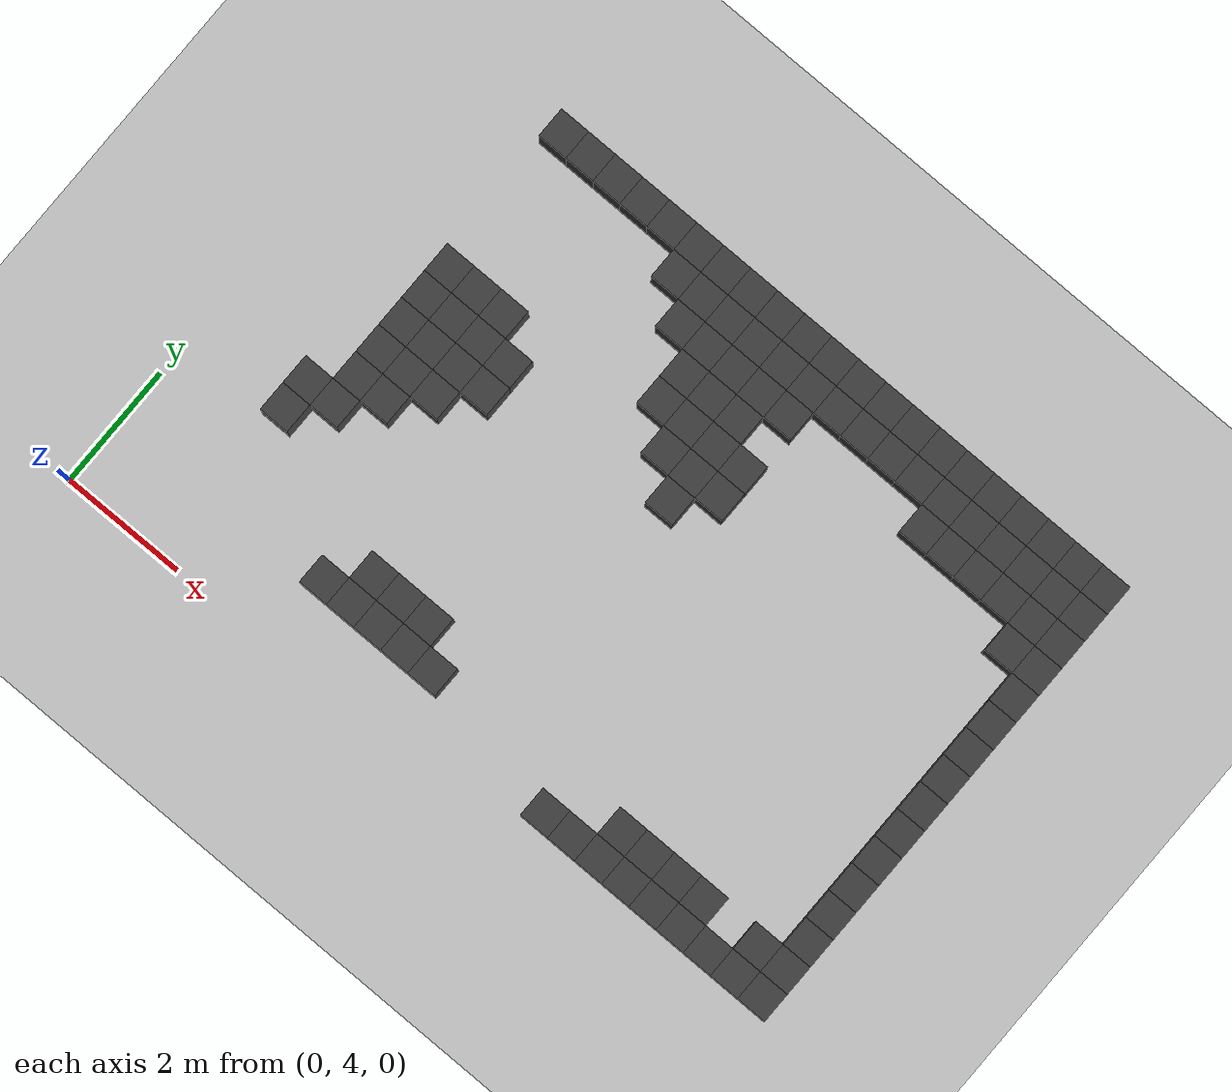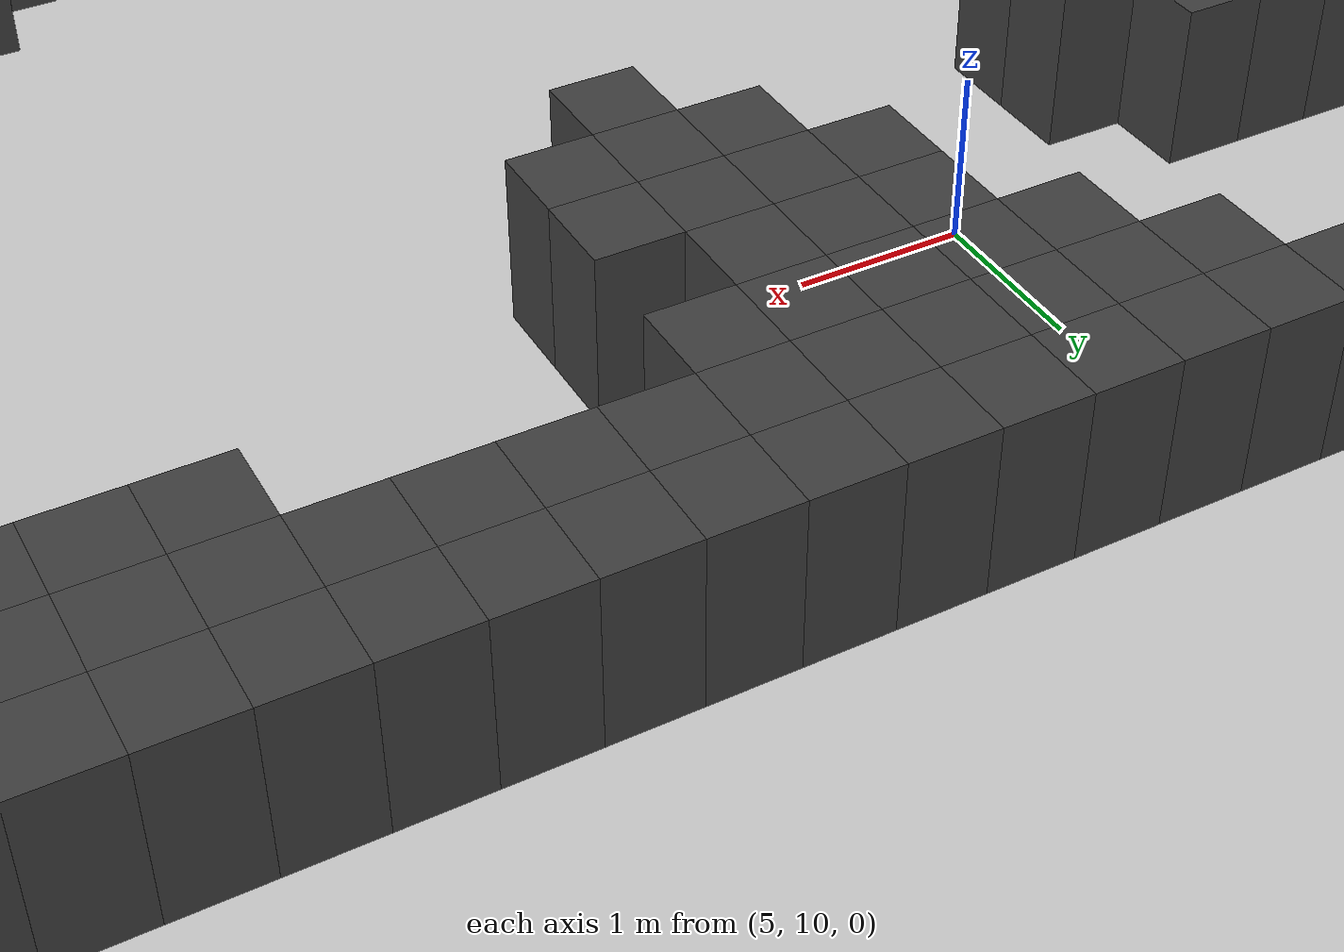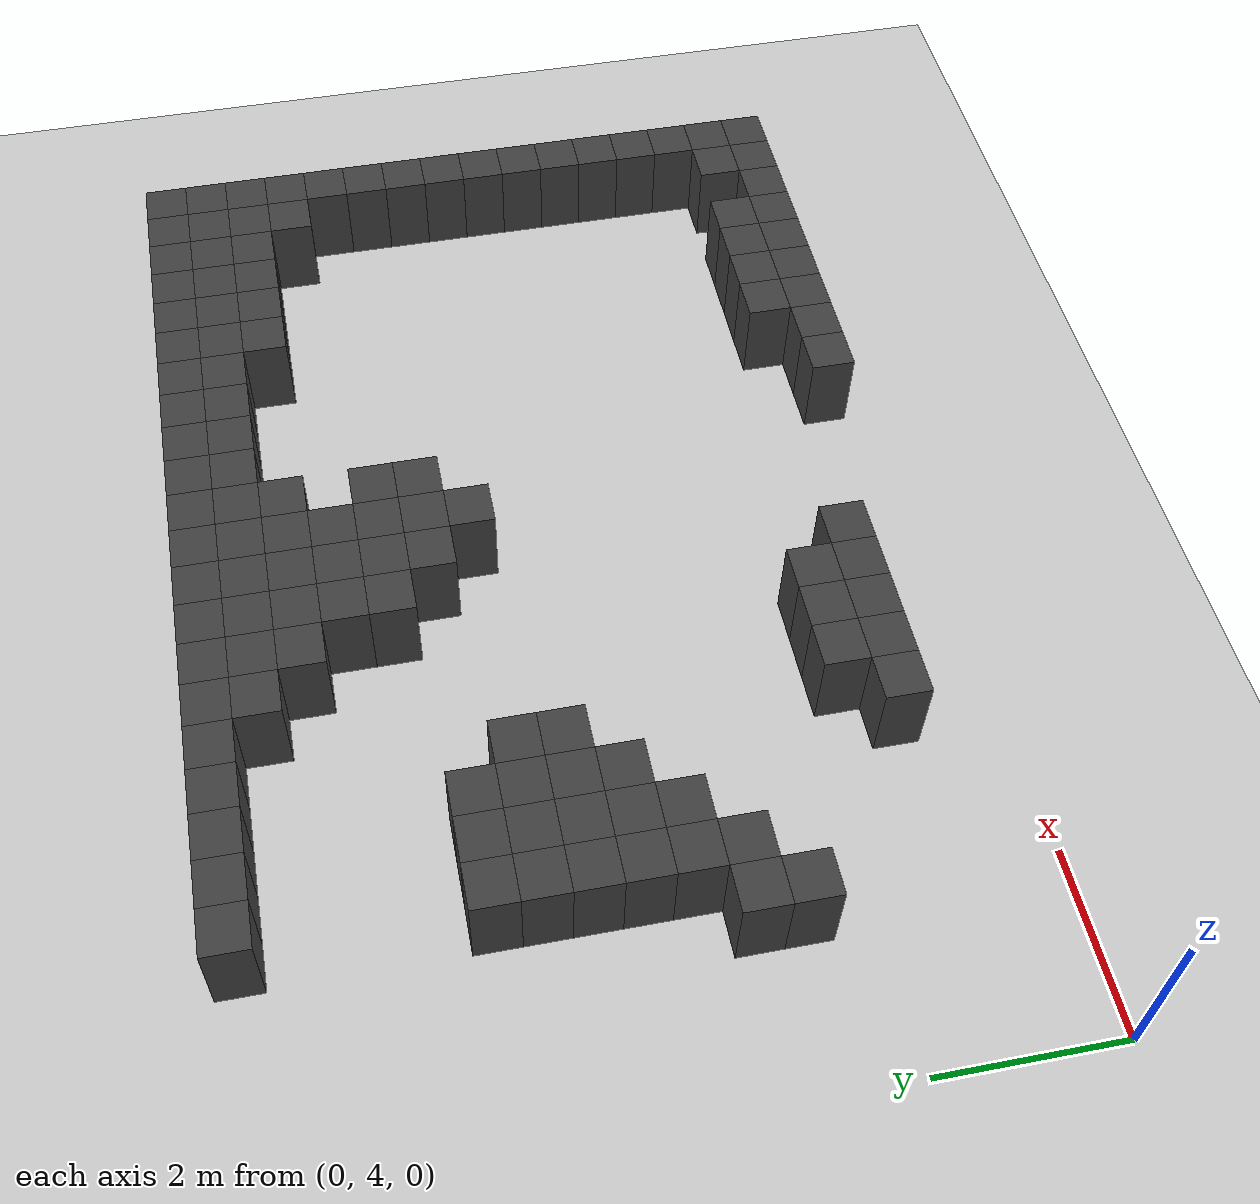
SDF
<sdf version="1.7">
 <world name="map_9405">
  <model name="ground_plane">
   <static>true</static>
   <link name="link">
    <collision name="collision">
     <geometry><plane><normal>0 0 1</normal><size>200 200</size></plane></geometry>
    </collision>
    <visual name="visual">
     <geometry><plane><normal>0 0 1</normal><size>200 200</size></plane></geometry>
     <material><ambient>0.8 0.8 0.8 1</ambient><diffuse>0.8 0.8 0.8 1</diffuse></material>
    </visual>
   </link>
  </model>
  <model name="maze_environment">
   <static>true</static>
   <link name="wall_29">
    <pose>2.250 12.250 0.500 0 0 0</pose>
    <collision name="col"><geometry><box><size>0.5 0.5 1.0</size></box></geometry></collision>
    <visual name="vis">
     <geometry><box><size>0.5 0.5 1.0</size></box></geometry>
     <material><ambient>0.15 0.15 0.15 1</ambient><diffuse>0.25 0.25 0.25 1</diffuse></material>
    </visual>
   </link>
   <link name="wall_30">
    <pose>2.750 12.250 0.500 0 0 0</pose>
    <collision name="col"><geometry><box><size>0.5 0.5 1.0</size></box></geometry></collision>
    <visual name="vis">
     <geometry><box><size>0.5 0.5 1.0</size></box></geometry>
     <material><ambient>0.15 0.15 0.15 1</ambient><diffuse>0.25 0.25 0.25 1</diffuse></material>
    </visual>
   </link>
   <link name="wall_31">
    <pose>3.250 12.250 0.500 0 0 0</pose>
    <collision name="col"><geometry><box><size>0.5 0.5 1.0</size></box></geometry></collision>
    <visual name="vis">
     <geometry><box><size>0.5 0.5 1.0</size></box></geometry>
     <material><ambient>0.15 0.15 0.15 1</ambient><diffuse>0.25 0.25 0.25 1</diffuse></material>
    </visual>
   </link>
   <link name="wall_32">
    <pose>3.750 12.250 0.500 0 0 0</pose>
    <collision name="col"><geometry><box><size>0.5 0.5 1.0</size></box></geometry></collision>
    <visual name="vis">
     <geometry><box><size>0.5 0.5 1.0</size></box></geometry>
     <material><ambient>0.15 0.15 0.15 1</ambient><diffuse>0.25 0.25 0.25 1</diffuse></material>
    </visual>
   </link>
   <link name="wall_33">
    <pose>4.250 12.250 0.500 0 0 0</pose>
    <collision name="col"><geometry><box><size>0.5 0.5 1.0</size></box></geometry></collision>
    <visual name="vis">
     <geometry><box><size>0.5 0.5 1.0</size></box></geometry>
     <material><ambient>0.15 0.15 0.15 1</ambient><diffuse>0.25 0.25 0.25 1</diffuse></material>
    </visual>
   </link>
   <link name="wall_34">
    <pose>4.750 12.250 0.500 0 0 0</pose>
    <collision name="col"><geometry><box><size>0.5 0.5 1.0</size></box></geometry></collision>
    <visual name="vis">
     <geometry><box><size>0.5 0.5 1.0</size></box></geometry>
     <material><ambient>0.15 0.15 0.15 1</ambient><diffuse>0.25 0.25 0.25 1</diffuse></material>
    </visual>
   </link>
   <link name="wall_35">
    <pose>5.250 12.250 0.500 0 0 0</pose>
    <collision name="col"><geometry><box><size>0.5 0.5 1.0</size></box></geometry></collision>
    <visual name="vis">
     <geometry><box><size>0.5 0.5 1.0</size></box></geometry>
     <material><ambient>0.15 0.15 0.15 1</ambient><diffuse>0.25 0.25 0.25 1</diffuse></material>
    </visual>
   </link>
   <link name="wall_36">
    <pose>5.750 12.250 0.500 0 0 0</pose>
    <collision name="col"><geometry><box><size>0.5 0.5 1.0</size></box></geometry></collision>
    <visual name="vis">
     <geometry><box><size>0.5 0.5 1.0</size></box></geometry>
     <material><ambient>0.15 0.15 0.15 1</ambient><diffuse>0.25 0.25 0.25 1</diffuse></material>
    </visual>
   </link>
   <link name="wall_37">
    <pose>6.250 12.250 0.500 0 0 0</pose>
    <collision name="col"><geometry><box><size>0.5 0.5 1.0</size></box></geometry></collision>
    <visual name="vis">
     <geometry><box><size>0.5 0.5 1.0</size></box></geometry>
     <material><ambient>0.15 0.15 0.15 1</ambient><diffuse>0.25 0.25 0.25 1</diffuse></material>
    </visual>
   </link>
   <link name="wall_38">
    <pose>6.750 12.250 0.500 0 0 0</pose>
    <collision name="col"><geometry><box><size>0.5 0.5 1.0</size></box></geometry></collision>
    <visual name="vis">
     <geometry><box><size>0.5 0.5 1.0</size></box></geometry>
     <material><ambient>0.15 0.15 0.15 1</ambient><diffuse>0.25 0.25 0.25 1</diffuse></material>
    </visual>
   </link>
   <link name="wall_39">
    <pose>7.250 12.250 0.500 0 0 0</pose>
    <collision name="col"><geometry><box><size>0.5 0.5 1.0</size></box></geometry></collision>
    <visual name="vis">
     <geometry><box><size>0.5 0.5 1.0</size></box></geometry>
     <material><ambient>0.15 0.15 0.15 1</ambient><diffuse>0.25 0.25 0.25 1</diffuse></material>
    </visual>
   </link>
   <link name="wall_40">
    <pose>7.750 12.250 0.500 0 0 0</pose>
    <collision name="col"><geometry><box><size>0.5 0.5 1.0</size></box></geometry></collision>
    <visual name="vis">
     <geometry><box><size>0.5 0.5 1.0</size></box></geometry>
     <material><ambient>0.15 0.15 0.15 1</ambient><diffuse>0.25 0.25 0.25 1</diffuse></material>
    </visual>
   </link>
   <link name="wall_41">
    <pose>8.250 12.250 0.500 0 0 0</pose>
    <collision name="col"><geometry><box><size>0.5 0.5 1.0</size></box></geometry></collision>
    <visual name="vis">
     <geometry><box><size>0.5 0.5 1.0</size></box></geometry>
     <material><ambient>0.15 0.15 0.15 1</ambient><diffuse>0.25 0.25 0.25 1</diffuse></material>
    </visual>
   </link>
   <link name="wall_42">
    <pose>8.750 12.250 0.500 0 0 0</pose>
    <collision name="col"><geometry><box><size>0.5 0.5 1.0</size></box></geometry></collision>
    <visual name="vis">
     <geometry><box><size>0.5 0.5 1.0</size></box></geometry>
     <material><ambient>0.15 0.15 0.15 1</ambient><diffuse>0.25 0.25 0.25 1</diffuse></material>
    </visual>
   </link>
   <link name="wall_43">
    <pose>9.250 12.250 0.500 0 0 0</pose>
    <collision name="col"><geometry><box><size>0.5 0.5 1.0</size></box></geometry></collision>
    <visual name="vis">
     <geometry><box><size>0.5 0.5 1.0</size></box></geometry>
     <material><ambient>0.15 0.15 0.15 1</ambient><diffuse>0.25 0.25 0.25 1</diffuse></material>
    </visual>
   </link>
   <link name="wall_44">
    <pose>9.750 12.250 0.500 0 0 0</pose>
    <collision name="col"><geometry><box><size>0.5 0.5 1.0</size></box></geometry></collision>
    <visual name="vis">
     <geometry><box><size>0.5 0.5 1.0</size></box></geometry>
     <material><ambient>0.15 0.15 0.15 1</ambient><diffuse>0.25 0.25 0.25 1</diffuse></material>
    </visual>
   </link>
   <link name="wall_45">
    <pose>10.250 12.250 0.500 0 0 0</pose>
    <collision name="col"><geometry><box><size>0.5 0.5 1.0</size></box></geometry></collision>
    <visual name="vis">
     <geometry><box><size>0.5 0.5 1.0</size></box></geometry>
     <material><ambient>0.15 0.15 0.15 1</ambient><diffuse>0.25 0.25 0.25 1</diffuse></material>
    </visual>
   </link>
   <link name="wall_46">
    <pose>10.750 12.250 0.500 0 0 0</pose>
    <collision name="col"><geometry><box><size>0.5 0.5 1.0</size></box></geometry></collision>
    <visual name="vis">
     <geometry><box><size>0.5 0.5 1.0</size></box></geometry>
     <material><ambient>0.15 0.15 0.15 1</ambient><diffuse>0.25 0.25 0.25 1</diffuse></material>
    </visual>
   </link>
   <link name="wall_47">
    <pose>11.250 12.250 0.500 0 0 0</pose>
    <collision name="col"><geometry><box><size>0.5 0.5 1.0</size></box></geometry></collision>
    <visual name="vis">
     <geometry><box><size>0.5 0.5 1.0</size></box></geometry>
     <material><ambient>0.15 0.15 0.15 1</ambient><diffuse>0.25 0.25 0.25 1</diffuse></material>
    </visual>
   </link>
   <link name="wall_48">
    <pose>11.750 12.250 0.500 0 0 0</pose>
    <collision name="col"><geometry><box><size>0.5 0.5 1.0</size></box></geometry></collision>
    <visual name="vis">
     <geometry><box><size>0.5 0.5 1.0</size></box></geometry>
     <material><ambient>0.15 0.15 0.15 1</ambient><diffuse>0.25 0.25 0.25 1</diffuse></material>
    </visual>
   </link>
   <link name="wall_49">
    <pose>12.250 12.250 0.500 0 0 0</pose>
    <collision name="col"><geometry><box><size>0.5 0.5 1.0</size></box></geometry></collision>
    <visual name="vis">
     <geometry><box><size>0.5 0.5 1.0</size></box></geometry>
     <material><ambient>0.15 0.15 0.15 1</ambient><diffuse>0.25 0.25 0.25 1</diffuse></material>
    </visual>
   </link>
   <link name="wall_60">
    <pose>4.750 11.750 0.500 0 0 0</pose>
    <collision name="col"><geometry><box><size>0.5 0.5 1.0</size></box></geometry></collision>
    <visual name="vis">
     <geometry><box><size>0.5 0.5 1.0</size></box></geometry>
     <material><ambient>0.15 0.15 0.15 1</ambient><diffuse>0.25 0.25 0.25 1</diffuse></material>
    </visual>
   </link>
   <link name="wall_61">
    <pose>5.250 11.750 0.500 0 0 0</pose>
    <collision name="col"><geometry><box><size>0.5 0.5 1.0</size></box></geometry></collision>
    <visual name="vis">
     <geometry><box><size>0.5 0.5 1.0</size></box></geometry>
     <material><ambient>0.15 0.15 0.15 1</ambient><diffuse>0.25 0.25 0.25 1</diffuse></material>
    </visual>
   </link>
   <link name="wall_62">
    <pose>5.750 11.750 0.500 0 0 0</pose>
    <collision name="col"><geometry><box><size>0.5 0.5 1.0</size></box></geometry></collision>
    <visual name="vis">
     <geometry><box><size>0.5 0.5 1.0</size></box></geometry>
     <material><ambient>0.15 0.15 0.15 1</ambient><diffuse>0.25 0.25 0.25 1</diffuse></material>
    </visual>
   </link>
   <link name="wall_63">
    <pose>6.250 11.750 0.500 0 0 0</pose>
    <collision name="col"><geometry><box><size>0.5 0.5 1.0</size></box></geometry></collision>
    <visual name="vis">
     <geometry><box><size>0.5 0.5 1.0</size></box></geometry>
     <material><ambient>0.15 0.15 0.15 1</ambient><diffuse>0.25 0.25 0.25 1</diffuse></material>
    </visual>
   </link>
   <link name="wall_64">
    <pose>6.750 11.750 0.500 0 0 0</pose>
    <collision name="col"><geometry><box><size>0.5 0.5 1.0</size></box></geometry></collision>
    <visual name="vis">
     <geometry><box><size>0.5 0.5 1.0</size></box></geometry>
     <material><ambient>0.15 0.15 0.15 1</ambient><diffuse>0.25 0.25 0.25 1</diffuse></material>
    </visual>
   </link>
   <link name="wall_65">
    <pose>7.250 11.750 0.500 0 0 0</pose>
    <collision name="col"><geometry><box><size>0.5 0.5 1.0</size></box></geometry></collision>
    <visual name="vis">
     <geometry><box><size>0.5 0.5 1.0</size></box></geometry>
     <material><ambient>0.15 0.15 0.15 1</ambient><diffuse>0.25 0.25 0.25 1</diffuse></material>
    </visual>
   </link>
   <link name="wall_66">
    <pose>7.750 11.750 0.500 0 0 0</pose>
    <collision name="col"><geometry><box><size>0.5 0.5 1.0</size></box></geometry></collision>
    <visual name="vis">
     <geometry><box><size>0.5 0.5 1.0</size></box></geometry>
     <material><ambient>0.15 0.15 0.15 1</ambient><diffuse>0.25 0.25 0.25 1</diffuse></material>
    </visual>
   </link>
   <link name="wall_67">
    <pose>8.250 11.750 0.500 0 0 0</pose>
    <collision name="col"><geometry><box><size>0.5 0.5 1.0</size></box></geometry></collision>
    <visual name="vis">
     <geometry><box><size>0.5 0.5 1.0</size></box></geometry>
     <material><ambient>0.15 0.15 0.15 1</ambient><diffuse>0.25 0.25 0.25 1</diffuse></material>
    </visual>
   </link>
   <link name="wall_68">
    <pose>8.750 11.750 0.500 0 0 0</pose>
    <collision name="col"><geometry><box><size>0.5 0.5 1.0</size></box></geometry></collision>
    <visual name="vis">
     <geometry><box><size>0.5 0.5 1.0</size></box></geometry>
     <material><ambient>0.15 0.15 0.15 1</ambient><diffuse>0.25 0.25 0.25 1</diffuse></material>
    </visual>
   </link>
   <link name="wall_69">
    <pose>9.250 11.750 0.500 0 0 0</pose>
    <collision name="col"><geometry><box><size>0.5 0.5 1.0</size></box></geometry></collision>
    <visual name="vis">
     <geometry><box><size>0.5 0.5 1.0</size></box></geometry>
     <material><ambient>0.15 0.15 0.15 1</ambient><diffuse>0.25 0.25 0.25 1</diffuse></material>
    </visual>
   </link>
   <link name="wall_70">
    <pose>9.750 11.750 0.500 0 0 0</pose>
    <collision name="col"><geometry><box><size>0.5 0.5 1.0</size></box></geometry></collision>
    <visual name="vis">
     <geometry><box><size>0.5 0.5 1.0</size></box></geometry>
     <material><ambient>0.15 0.15 0.15 1</ambient><diffuse>0.25 0.25 0.25 1</diffuse></material>
    </visual>
   </link>
   <link name="wall_71">
    <pose>10.250 11.750 0.500 0 0 0</pose>
    <collision name="col"><geometry><box><size>0.5 0.5 1.0</size></box></geometry></collision>
    <visual name="vis">
     <geometry><box><size>0.5 0.5 1.0</size></box></geometry>
     <material><ambient>0.15 0.15 0.15 1</ambient><diffuse>0.25 0.25 0.25 1</diffuse></material>
    </visual>
   </link>
   <link name="wall_72">
    <pose>10.750 11.750 0.500 0 0 0</pose>
    <collision name="col"><geometry><box><size>0.5 0.5 1.0</size></box></geometry></collision>
    <visual name="vis">
     <geometry><box><size>0.5 0.5 1.0</size></box></geometry>
     <material><ambient>0.15 0.15 0.15 1</ambient><diffuse>0.25 0.25 0.25 1</diffuse></material>
    </visual>
   </link>
   <link name="wall_73">
    <pose>11.250 11.750 0.500 0 0 0</pose>
    <collision name="col"><geometry><box><size>0.5 0.5 1.0</size></box></geometry></collision>
    <visual name="vis">
     <geometry><box><size>0.5 0.5 1.0</size></box></geometry>
     <material><ambient>0.15 0.15 0.15 1</ambient><diffuse>0.25 0.25 0.25 1</diffuse></material>
    </visual>
   </link>
   <link name="wall_74">
    <pose>11.750 11.750 0.500 0 0 0</pose>
    <collision name="col"><geometry><box><size>0.5 0.5 1.0</size></box></geometry></collision>
    <visual name="vis">
     <geometry><box><size>0.5 0.5 1.0</size></box></geometry>
     <material><ambient>0.15 0.15 0.15 1</ambient><diffuse>0.25 0.25 0.25 1</diffuse></material>
    </visual>
   </link>
   <link name="wall_75">
    <pose>12.250 11.750 0.500 0 0 0</pose>
    <collision name="col"><geometry><box><size>0.5 0.5 1.0</size></box></geometry></collision>
    <visual name="vis">
     <geometry><box><size>0.5 0.5 1.0</size></box></geometry>
     <material><ambient>0.15 0.15 0.15 1</ambient><diffuse>0.25 0.25 0.25 1</diffuse></material>
    </visual>
   </link>
   <link name="wall_78">
    <pose>5.250 11.250 0.500 0 0 0</pose>
    <collision name="col"><geometry><box><size>0.5 0.5 1.0</size></box></geometry></collision>
    <visual name="vis">
     <geometry><box><size>0.5 0.5 1.0</size></box></geometry>
     <material><ambient>0.15 0.15 0.15 1</ambient><diffuse>0.25 0.25 0.25 1</diffuse></material>
    </visual>
   </link>
   <link name="wall_79">
    <pose>5.750 11.250 0.500 0 0 0</pose>
    <collision name="col"><geometry><box><size>0.5 0.5 1.0</size></box></geometry></collision>
    <visual name="vis">
     <geometry><box><size>0.5 0.5 1.0</size></box></geometry>
     <material><ambient>0.15 0.15 0.15 1</ambient><diffuse>0.25 0.25 0.25 1</diffuse></material>
    </visual>
   </link>
   <link name="wall_80">
    <pose>6.250 11.250 0.500 0 0 0</pose>
    <collision name="col"><geometry><box><size>0.5 0.5 1.0</size></box></geometry></collision>
    <visual name="vis">
     <geometry><box><size>0.5 0.5 1.0</size></box></geometry>
     <material><ambient>0.15 0.15 0.15 1</ambient><diffuse>0.25 0.25 0.25 1</diffuse></material>
    </visual>
   </link>
   <link name="wall_81">
    <pose>6.750 11.250 0.500 0 0 0</pose>
    <collision name="col"><geometry><box><size>0.5 0.5 1.0</size></box></geometry></collision>
    <visual name="vis">
     <geometry><box><size>0.5 0.5 1.0</size></box></geometry>
     <material><ambient>0.15 0.15 0.15 1</ambient><diffuse>0.25 0.25 0.25 1</diffuse></material>
    </visual>
   </link>
   <link name="wall_82">
    <pose>7.250 11.250 0.500 0 0 0</pose>
    <collision name="col"><geometry><box><size>0.5 0.5 1.0</size></box></geometry></collision>
    <visual name="vis">
     <geometry><box><size>0.5 0.5 1.0</size></box></geometry>
     <material><ambient>0.15 0.15 0.15 1</ambient><diffuse>0.25 0.25 0.25 1</diffuse></material>
    </visual>
   </link>
   <link name="wall_83">
    <pose>9.750 11.250 0.500 0 0 0</pose>
    <collision name="col"><geometry><box><size>0.5 0.5 1.0</size></box></geometry></collision>
    <visual name="vis">
     <geometry><box><size>0.5 0.5 1.0</size></box></geometry>
     <material><ambient>0.15 0.15 0.15 1</ambient><diffuse>0.25 0.25 0.25 1</diffuse></material>
    </visual>
   </link>
   <link name="wall_84">
    <pose>10.250 11.250 0.500 0 0 0</pose>
    <collision name="col"><geometry><box><size>0.5 0.5 1.0</size></box></geometry></collision>
    <visual name="vis">
     <geometry><box><size>0.5 0.5 1.0</size></box></geometry>
     <material><ambient>0.15 0.15 0.15 1</ambient><diffuse>0.25 0.25 0.25 1</diffuse></material>
    </visual>
   </link>
   <link name="wall_85">
    <pose>10.750 11.250 0.500 0 0 0</pose>
    <collision name="col"><geometry><box><size>0.5 0.5 1.0</size></box></geometry></collision>
    <visual name="vis">
     <geometry><box><size>0.5 0.5 1.0</size></box></geometry>
     <material><ambient>0.15 0.15 0.15 1</ambient><diffuse>0.25 0.25 0.25 1</diffuse></material>
    </visual>
   </link>
   <link name="wall_86">
    <pose>11.250 11.250 0.500 0 0 0</pose>
    <collision name="col"><geometry><box><size>0.5 0.5 1.0</size></box></geometry></collision>
    <visual name="vis">
     <geometry><box><size>0.5 0.5 1.0</size></box></geometry>
     <material><ambient>0.15 0.15 0.15 1</ambient><diffuse>0.25 0.25 0.25 1</diffuse></material>
    </visual>
   </link>
   <link name="wall_87">
    <pose>11.750 11.250 0.500 0 0 0</pose>
    <collision name="col"><geometry><box><size>0.5 0.5 1.0</size></box></geometry></collision>
    <visual name="vis">
     <geometry><box><size>0.5 0.5 1.0</size></box></geometry>
     <material><ambient>0.15 0.15 0.15 1</ambient><diffuse>0.25 0.25 0.25 1</diffuse></material>
    </visual>
   </link>
   <link name="wall_88">
    <pose>12.250 11.250 0.500 0 0 0</pose>
    <collision name="col"><geometry><box><size>0.5 0.5 1.0</size></box></geometry></collision>
    <visual name="vis">
     <geometry><box><size>0.5 0.5 1.0</size></box></geometry>
     <material><ambient>0.15 0.15 0.15 1</ambient><diffuse>0.25 0.25 0.25 1</diffuse></material>
    </visual>
   </link>
   <link name="wall_93">
    <pose>5.750 10.750 0.500 0 0 0</pose>
    <collision name="col"><geometry><box><size>0.5 0.5 1.0</size></box></geometry></collision>
    <visual name="vis">
     <geometry><box><size>0.5 0.5 1.0</size></box></geometry>
     <material><ambient>0.15 0.15 0.15 1</ambient><diffuse>0.25 0.25 0.25 1</diffuse></material>
    </visual>
   </link>
   <link name="wall_94">
    <pose>6.250 10.750 0.500 0 0 0</pose>
    <collision name="col"><geometry><box><size>0.5 0.5 1.0</size></box></geometry></collision>
    <visual name="vis">
     <geometry><box><size>0.5 0.5 1.0</size></box></geometry>
     <material><ambient>0.15 0.15 0.15 1</ambient><diffuse>0.25 0.25 0.25 1</diffuse></material>
    </visual>
   </link>
   <link name="wall_95">
    <pose>6.750 10.750 0.500 0 0 0</pose>
    <collision name="col"><geometry><box><size>0.5 0.5 1.0</size></box></geometry></collision>
    <visual name="vis">
     <geometry><box><size>0.5 0.5 1.0</size></box></geometry>
     <material><ambient>0.15 0.15 0.15 1</ambient><diffuse>0.25 0.25 0.25 1</diffuse></material>
    </visual>
   </link>
   <link name="wall_96">
    <pose>11.750 10.750 0.500 0 0 0</pose>
    <collision name="col"><geometry><box><size>0.5 0.5 1.0</size></box></geometry></collision>
    <visual name="vis">
     <geometry><box><size>0.5 0.5 1.0</size></box></geometry>
     <material><ambient>0.15 0.15 0.15 1</ambient><diffuse>0.25 0.25 0.25 1</diffuse></material>
    </visual>
   </link>
   <link name="wall_97">
    <pose>12.250 10.750 0.500 0 0 0</pose>
    <collision name="col"><geometry><box><size>0.5 0.5 1.0</size></box></geometry></collision>
    <visual name="vis">
     <geometry><box><size>0.5 0.5 1.0</size></box></geometry>
     <material><ambient>0.15 0.15 0.15 1</ambient><diffuse>0.25 0.25 0.25 1</diffuse></material>
    </visual>
   </link>
   <link name="wall_104">
    <pose>5.750 10.250 0.500 0 0 0</pose>
    <collision name="col"><geometry><box><size>0.5 0.5 1.0</size></box></geometry></collision>
    <visual name="vis">
     <geometry><box><size>0.5 0.5 1.0</size></box></geometry>
     <material><ambient>0.15 0.15 0.15 1</ambient><diffuse>0.25 0.25 0.25 1</diffuse></material>
    </visual>
   </link>
   <link name="wall_105">
    <pose>6.250 10.250 0.500 0 0 0</pose>
    <collision name="col"><geometry><box><size>0.5 0.5 1.0</size></box></geometry></collision>
    <visual name="vis">
     <geometry><box><size>0.5 0.5 1.0</size></box></geometry>
     <material><ambient>0.15 0.15 0.15 1</ambient><diffuse>0.25 0.25 0.25 1</diffuse></material>
    </visual>
   </link>
   <link name="wall_106">
    <pose>6.750 10.250 0.500 0 0 0</pose>
    <collision name="col"><geometry><box><size>0.5 0.5 1.0</size></box></geometry></collision>
    <visual name="vis">
     <geometry><box><size>0.5 0.5 1.0</size></box></geometry>
     <material><ambient>0.15 0.15 0.15 1</ambient><diffuse>0.25 0.25 0.25 1</diffuse></material>
    </visual>
   </link>
   <link name="wall_107">
    <pose>7.250 10.250 0.500 0 0 0</pose>
    <collision name="col"><geometry><box><size>0.5 0.5 1.0</size></box></geometry></collision>
    <visual name="vis">
     <geometry><box><size>0.5 0.5 1.0</size></box></geometry>
     <material><ambient>0.15 0.15 0.15 1</ambient><diffuse>0.25 0.25 0.25 1</diffuse></material>
    </visual>
   </link>
   <link name="wall_108">
    <pose>12.250 10.250 0.500 0 0 0</pose>
    <collision name="col"><geometry><box><size>0.5 0.5 1.0</size></box></geometry></collision>
    <visual name="vis">
     <geometry><box><size>0.5 0.5 1.0</size></box></geometry>
     <material><ambient>0.15 0.15 0.15 1</ambient><diffuse>0.25 0.25 0.25 1</diffuse></material>
    </visual>
   </link>
   <link name="wall_116">
    <pose>2.250 9.750 0.500 0 0 0</pose>
    <collision name="col"><geometry><box><size>0.5 0.5 1.0</size></box></geometry></collision>
    <visual name="vis">
     <geometry><box><size>0.5 0.5 1.0</size></box></geometry>
     <material><ambient>0.15 0.15 0.15 1</ambient><diffuse>0.25 0.25 0.25 1</diffuse></material>
    </visual>
   </link>
   <link name="wall_117">
    <pose>2.750 9.750 0.500 0 0 0</pose>
    <collision name="col"><geometry><box><size>0.5 0.5 1.0</size></box></geometry></collision>
    <visual name="vis">
     <geometry><box><size>0.5 0.5 1.0</size></box></geometry>
     <material><ambient>0.15 0.15 0.15 1</ambient><diffuse>0.25 0.25 0.25 1</diffuse></material>
    </visual>
   </link>
   <link name="wall_118">
    <pose>3.250 9.750 0.500 0 0 0</pose>
    <collision name="col"><geometry><box><size>0.5 0.5 1.0</size></box></geometry></collision>
    <visual name="vis">
     <geometry><box><size>0.5 0.5 1.0</size></box></geometry>
     <material><ambient>0.15 0.15 0.15 1</ambient><diffuse>0.25 0.25 0.25 1</diffuse></material>
    </visual>
   </link>
   <link name="wall_119">
    <pose>6.250 9.750 0.500 0 0 0</pose>
    <collision name="col"><geometry><box><size>0.5 0.5 1.0</size></box></geometry></collision>
    <visual name="vis">
     <geometry><box><size>0.5 0.5 1.0</size></box></geometry>
     <material><ambient>0.15 0.15 0.15 1</ambient><diffuse>0.25 0.25 0.25 1</diffuse></material>
    </visual>
   </link>
   <link name="wall_120">
    <pose>6.750 9.750 0.500 0 0 0</pose>
    <collision name="col"><geometry><box><size>0.5 0.5 1.0</size></box></geometry></collision>
    <visual name="vis">
     <geometry><box><size>0.5 0.5 1.0</size></box></geometry>
     <material><ambient>0.15 0.15 0.15 1</ambient><diffuse>0.25 0.25 0.25 1</diffuse></material>
    </visual>
   </link>
   <link name="wall_121">
    <pose>7.250 9.750 0.500 0 0 0</pose>
    <collision name="col"><geometry><box><size>0.5 0.5 1.0</size></box></geometry></collision>
    <visual name="vis">
     <geometry><box><size>0.5 0.5 1.0</size></box></geometry>
     <material><ambient>0.15 0.15 0.15 1</ambient><diffuse>0.25 0.25 0.25 1</diffuse></material>
    </visual>
   </link>
   <link name="wall_122">
    <pose>12.250 9.750 0.500 0 0 0</pose>
    <collision name="col"><geometry><box><size>0.5 0.5 1.0</size></box></geometry></collision>
    <visual name="vis">
     <geometry><box><size>0.5 0.5 1.0</size></box></geometry>
     <material><ambient>0.15 0.15 0.15 1</ambient><diffuse>0.25 0.25 0.25 1</diffuse></material>
    </visual>
   </link>
   <link name="wall_132">
    <pose>2.250 9.250 0.500 0 0 0</pose>
    <collision name="col"><geometry><box><size>0.5 0.5 1.0</size></box></geometry></collision>
    <visual name="vis">
     <geometry><box><size>0.5 0.5 1.0</size></box></geometry>
     <material><ambient>0.15 0.15 0.15 1</ambient><diffuse>0.25 0.25 0.25 1</diffuse></material>
    </visual>
   </link>
   <link name="wall_133">
    <pose>2.750 9.250 0.500 0 0 0</pose>
    <collision name="col"><geometry><box><size>0.5 0.5 1.0</size></box></geometry></collision>
    <visual name="vis">
     <geometry><box><size>0.5 0.5 1.0</size></box></geometry>
     <material><ambient>0.15 0.15 0.15 1</ambient><diffuse>0.25 0.25 0.25 1</diffuse></material>
    </visual>
   </link>
   <link name="wall_134">
    <pose>3.250 9.250 0.500 0 0 0</pose>
    <collision name="col"><geometry><box><size>0.5 0.5 1.0</size></box></geometry></collision>
    <visual name="vis">
     <geometry><box><size>0.5 0.5 1.0</size></box></geometry>
     <material><ambient>0.15 0.15 0.15 1</ambient><diffuse>0.25 0.25 0.25 1</diffuse></material>
    </visual>
   </link>
   <link name="wall_135">
    <pose>3.750 9.250 0.500 0 0 0</pose>
    <collision name="col"><geometry><box><size>0.5 0.5 1.0</size></box></geometry></collision>
    <visual name="vis">
     <geometry><box><size>0.5 0.5 1.0</size></box></geometry>
     <material><ambient>0.15 0.15 0.15 1</ambient><diffuse>0.25 0.25 0.25 1</diffuse></material>
    </visual>
   </link>
   <link name="wall_136">
    <pose>6.750 9.250 0.500 0 0 0</pose>
    <collision name="col"><geometry><box><size>0.5 0.5 1.0</size></box></geometry></collision>
    <visual name="vis">
     <geometry><box><size>0.5 0.5 1.0</size></box></geometry>
     <material><ambient>0.15 0.15 0.15 1</ambient><diffuse>0.25 0.25 0.25 1</diffuse></material>
    </visual>
   </link>
   <link name="wall_137">
    <pose>12.250 9.250 0.500 0 0 0</pose>
    <collision name="col"><geometry><box><size>0.5 0.5 1.0</size></box></geometry></collision>
    <visual name="vis">
     <geometry><box><size>0.5 0.5 1.0</size></box></geometry>
     <material><ambient>0.15 0.15 0.15 1</ambient><diffuse>0.25 0.25 0.25 1</diffuse></material>
    </visual>
   </link>
   <link name="wall_148">
    <pose>2.250 8.750 0.500 0 0 0</pose>
    <collision name="col"><geometry><box><size>0.5 0.5 1.0</size></box></geometry></collision>
    <visual name="vis">
     <geometry><box><size>0.5 0.5 1.0</size></box></geometry>
     <material><ambient>0.15 0.15 0.15 1</ambient><diffuse>0.25 0.25 0.25 1</diffuse></material>
    </visual>
   </link>
   <link name="wall_149">
    <pose>2.750 8.750 0.500 0 0 0</pose>
    <collision name="col"><geometry><box><size>0.5 0.5 1.0</size></box></geometry></collision>
    <visual name="vis">
     <geometry><box><size>0.5 0.5 1.0</size></box></geometry>
     <material><ambient>0.15 0.15 0.15 1</ambient><diffuse>0.25 0.25 0.25 1</diffuse></material>
    </visual>
   </link>
   <link name="wall_150">
    <pose>3.250 8.750 0.500 0 0 0</pose>
    <collision name="col"><geometry><box><size>0.5 0.5 1.0</size></box></geometry></collision>
    <visual name="vis">
     <geometry><box><size>0.5 0.5 1.0</size></box></geometry>
     <material><ambient>0.15 0.15 0.15 1</ambient><diffuse>0.25 0.25 0.25 1</diffuse></material>
    </visual>
   </link>
   <link name="wall_151">
    <pose>3.750 8.750 0.500 0 0 0</pose>
    <collision name="col"><geometry><box><size>0.5 0.5 1.0</size></box></geometry></collision>
    <visual name="vis">
     <geometry><box><size>0.5 0.5 1.0</size></box></geometry>
     <material><ambient>0.15 0.15 0.15 1</ambient><diffuse>0.25 0.25 0.25 1</diffuse></material>
    </visual>
   </link>
   <link name="wall_152">
    <pose>12.250 8.750 0.500 0 0 0</pose>
    <collision name="col"><geometry><box><size>0.5 0.5 1.0</size></box></geometry></collision>
    <visual name="vis">
     <geometry><box><size>0.5 0.5 1.0</size></box></geometry>
     <material><ambient>0.15 0.15 0.15 1</ambient><diffuse>0.25 0.25 0.25 1</diffuse></material>
    </visual>
   </link>
   <link name="wall_164">
    <pose>2.250 8.250 0.500 0 0 0</pose>
    <collision name="col"><geometry><box><size>0.5 0.5 1.0</size></box></geometry></collision>
    <visual name="vis">
     <geometry><box><size>0.5 0.5 1.0</size></box></geometry>
     <material><ambient>0.15 0.15 0.15 1</ambient><diffuse>0.25 0.25 0.25 1</diffuse></material>
    </visual>
   </link>
   <link name="wall_165">
    <pose>2.750 8.250 0.500 0 0 0</pose>
    <collision name="col"><geometry><box><size>0.5 0.5 1.0</size></box></geometry></collision>
    <visual name="vis">
     <geometry><box><size>0.5 0.5 1.0</size></box></geometry>
     <material><ambient>0.15 0.15 0.15 1</ambient><diffuse>0.25 0.25 0.25 1</diffuse></material>
    </visual>
   </link>
   <link name="wall_166">
    <pose>3.250 8.250 0.500 0 0 0</pose>
    <collision name="col"><geometry><box><size>0.5 0.5 1.0</size></box></geometry></collision>
    <visual name="vis">
     <geometry><box><size>0.5 0.5 1.0</size></box></geometry>
     <material><ambient>0.15 0.15 0.15 1</ambient><diffuse>0.25 0.25 0.25 1</diffuse></material>
    </visual>
   </link>
   <link name="wall_167">
    <pose>12.250 8.250 0.500 0 0 0</pose>
    <collision name="col"><geometry><box><size>0.5 0.5 1.0</size></box></geometry></collision>
    <visual name="vis">
     <geometry><box><size>0.5 0.5 1.0</size></box></geometry>
     <material><ambient>0.15 0.15 0.15 1</ambient><diffuse>0.25 0.25 0.25 1</diffuse></material>
    </visual>
   </link>
   <link name="wall_179">
    <pose>2.250 7.750 0.500 0 0 0</pose>
    <collision name="col"><geometry><box><size>0.5 0.5 1.0</size></box></geometry></collision>
    <visual name="vis">
     <geometry><box><size>0.5 0.5 1.0</size></box></geometry>
     <material><ambient>0.15 0.15 0.15 1</ambient><diffuse>0.25 0.25 0.25 1</diffuse></material>
    </visual>
   </link>
   <link name="wall_180">
    <pose>2.750 7.750 0.500 0 0 0</pose>
    <collision name="col"><geometry><box><size>0.5 0.5 1.0</size></box></geometry></collision>
    <visual name="vis">
     <geometry><box><size>0.5 0.5 1.0</size></box></geometry>
     <material><ambient>0.15 0.15 0.15 1</ambient><diffuse>0.25 0.25 0.25 1</diffuse></material>
    </visual>
   </link>
   <link name="wall_181">
    <pose>12.250 7.750 0.500 0 0 0</pose>
    <collision name="col"><geometry><box><size>0.5 0.5 1.0</size></box></geometry></collision>
    <visual name="vis">
     <geometry><box><size>0.5 0.5 1.0</size></box></geometry>
     <material><ambient>0.15 0.15 0.15 1</ambient><diffuse>0.25 0.25 0.25 1</diffuse></material>
    </visual>
   </link>
   <link name="wall_189">
    <pose>1.750 7.250 0.500 0 0 0</pose>
    <collision name="col"><geometry><box><size>0.5 0.5 1.0</size></box></geometry></collision>
    <visual name="vis">
     <geometry><box><size>0.5 0.5 1.0</size></box></geometry>
     <material><ambient>0.15 0.15 0.15 1</ambient><diffuse>0.25 0.25 0.25 1</diffuse></material>
    </visual>
   </link>
   <link name="wall_190">
    <pose>2.250 7.250 0.500 0 0 0</pose>
    <collision name="col"><geometry><box><size>0.5 0.5 1.0</size></box></geometry></collision>
    <visual name="vis">
     <geometry><box><size>0.5 0.5 1.0</size></box></geometry>
     <material><ambient>0.15 0.15 0.15 1</ambient><diffuse>0.25 0.25 0.25 1</diffuse></material>
    </visual>
   </link>
   <link name="wall_191">
    <pose>12.250 7.250 0.500 0 0 0</pose>
    <collision name="col"><geometry><box><size>0.5 0.5 1.0</size></box></geometry></collision>
    <visual name="vis">
     <geometry><box><size>0.5 0.5 1.0</size></box></geometry>
     <material><ambient>0.15 0.15 0.15 1</ambient><diffuse>0.25 0.25 0.25 1</diffuse></material>
    </visual>
   </link>
   <link name="wall_197">
    <pose>1.750 6.750 0.500 0 0 0</pose>
    <collision name="col"><geometry><box><size>0.5 0.5 1.0</size></box></geometry></collision>
    <visual name="vis">
     <geometry><box><size>0.5 0.5 1.0</size></box></geometry>
     <material><ambient>0.15 0.15 0.15 1</ambient><diffuse>0.25 0.25 0.25 1</diffuse></material>
    </visual>
   </link>
   <link name="wall_198">
    <pose>12.250 6.750 0.500 0 0 0</pose>
    <collision name="col"><geometry><box><size>0.5 0.5 1.0</size></box></geometry></collision>
    <visual name="vis">
     <geometry><box><size>0.5 0.5 1.0</size></box></geometry>
     <material><ambient>0.15 0.15 0.15 1</ambient><diffuse>0.25 0.25 0.25 1</diffuse></material>
    </visual>
   </link>
   <link name="wall_202">
    <pose>12.250 6.250 0.500 0 0 0</pose>
    <collision name="col"><geometry><box><size>0.5 0.5 1.0</size></box></geometry></collision>
    <visual name="vis">
     <geometry><box><size>0.5 0.5 1.0</size></box></geometry>
     <material><ambient>0.15 0.15 0.15 1</ambient><diffuse>0.25 0.25 0.25 1</diffuse></material>
    </visual>
   </link>
   <link name="wall_207">
    <pose>4.250 5.750 0.500 0 0 0</pose>
    <collision name="col"><geometry><box><size>0.5 0.5 1.0</size></box></geometry></collision>
    <visual name="vis">
     <geometry><box><size>0.5 0.5 1.0</size></box></geometry>
     <material><ambient>0.15 0.15 0.15 1</ambient><diffuse>0.25 0.25 0.25 1</diffuse></material>
    </visual>
   </link>
   <link name="wall_208">
    <pose>4.750 5.750 0.500 0 0 0</pose>
    <collision name="col"><geometry><box><size>0.5 0.5 1.0</size></box></geometry></collision>
    <visual name="vis">
     <geometry><box><size>0.5 0.5 1.0</size></box></geometry>
     <material><ambient>0.15 0.15 0.15 1</ambient><diffuse>0.25 0.25 0.25 1</diffuse></material>
    </visual>
   </link>
   <link name="wall_209">
    <pose>5.250 5.750 0.500 0 0 0</pose>
    <collision name="col"><geometry><box><size>0.5 0.5 1.0</size></box></geometry></collision>
    <visual name="vis">
     <geometry><box><size>0.5 0.5 1.0</size></box></geometry>
     <material><ambient>0.15 0.15 0.15 1</ambient><diffuse>0.25 0.25 0.25 1</diffuse></material>
    </visual>
   </link>
   <link name="wall_210">
    <pose>12.250 5.750 0.500 0 0 0</pose>
    <collision name="col"><geometry><box><size>0.5 0.5 1.0</size></box></geometry></collision>
    <visual name="vis">
     <geometry><box><size>0.5 0.5 1.0</size></box></geometry>
     <material><ambient>0.15 0.15 0.15 1</ambient><diffuse>0.25 0.25 0.25 1</diffuse></material>
    </visual>
   </link>
   <link name="wall_213">
    <pose>3.750 5.250 0.500 0 0 0</pose>
    <collision name="col"><geometry><box><size>0.5 0.5 1.0</size></box></geometry></collision>
    <visual name="vis">
     <geometry><box><size>0.5 0.5 1.0</size></box></geometry>
     <material><ambient>0.15 0.15 0.15 1</ambient><diffuse>0.25 0.25 0.25 1</diffuse></material>
    </visual>
   </link>
   <link name="wall_214">
    <pose>4.250 5.250 0.500 0 0 0</pose>
    <collision name="col"><geometry><box><size>0.5 0.5 1.0</size></box></geometry></collision>
    <visual name="vis">
     <geometry><box><size>0.5 0.5 1.0</size></box></geometry>
     <material><ambient>0.15 0.15 0.15 1</ambient><diffuse>0.25 0.25 0.25 1</diffuse></material>
    </visual>
   </link>
   <link name="wall_215">
    <pose>4.750 5.250 0.500 0 0 0</pose>
    <collision name="col"><geometry><box><size>0.5 0.5 1.0</size></box></geometry></collision>
    <visual name="vis">
     <geometry><box><size>0.5 0.5 1.0</size></box></geometry>
     <material><ambient>0.15 0.15 0.15 1</ambient><diffuse>0.25 0.25 0.25 1</diffuse></material>
    </visual>
   </link>
   <link name="wall_216">
    <pose>5.250 5.250 0.500 0 0 0</pose>
    <collision name="col"><geometry><box><size>0.5 0.5 1.0</size></box></geometry></collision>
    <visual name="vis">
     <geometry><box><size>0.5 0.5 1.0</size></box></geometry>
     <material><ambient>0.15 0.15 0.15 1</ambient><diffuse>0.25 0.25 0.25 1</diffuse></material>
    </visual>
   </link>
   <link name="wall_217">
    <pose>5.750 5.250 0.500 0 0 0</pose>
    <collision name="col"><geometry><box><size>0.5 0.5 1.0</size></box></geometry></collision>
    <visual name="vis">
     <geometry><box><size>0.5 0.5 1.0</size></box></geometry>
     <material><ambient>0.15 0.15 0.15 1</ambient><diffuse>0.25 0.25 0.25 1</diffuse></material>
    </visual>
   </link>
   <link name="wall_218">
    <pose>9.250 5.250 0.500 0 0 0</pose>
    <collision name="col"><geometry><box><size>0.5 0.5 1.0</size></box></geometry></collision>
    <visual name="vis">
     <geometry><box><size>0.5 0.5 1.0</size></box></geometry>
     <material><ambient>0.15 0.15 0.15 1</ambient><diffuse>0.25 0.25 0.25 1</diffuse></material>
    </visual>
   </link>
   <link name="wall_219">
    <pose>9.750 5.250 0.500 0 0 0</pose>
    <collision name="col"><geometry><box><size>0.5 0.5 1.0</size></box></geometry></collision>
    <visual name="vis">
     <geometry><box><size>0.5 0.5 1.0</size></box></geometry>
     <material><ambient>0.15 0.15 0.15 1</ambient><diffuse>0.25 0.25 0.25 1</diffuse></material>
    </visual>
   </link>
   <link name="wall_220">
    <pose>10.250 5.250 0.500 0 0 0</pose>
    <collision name="col"><geometry><box><size>0.5 0.5 1.0</size></box></geometry></collision>
    <visual name="vis">
     <geometry><box><size>0.5 0.5 1.0</size></box></geometry>
     <material><ambient>0.15 0.15 0.15 1</ambient><diffuse>0.25 0.25 0.25 1</diffuse></material>
    </visual>
   </link>
   <link name="wall_221">
    <pose>10.750 5.250 0.500 0 0 0</pose>
    <collision name="col"><geometry><box><size>0.5 0.5 1.0</size></box></geometry></collision>
    <visual name="vis">
     <geometry><box><size>0.5 0.5 1.0</size></box></geometry>
     <material><ambient>0.15 0.15 0.15 1</ambient><diffuse>0.25 0.25 0.25 1</diffuse></material>
    </visual>
   </link>
   <link name="wall_222">
    <pose>11.750 5.250 0.500 0 0 0</pose>
    <collision name="col"><geometry><box><size>0.5 0.5 1.0</size></box></geometry></collision>
    <visual name="vis">
     <geometry><box><size>0.5 0.5 1.0</size></box></geometry>
     <material><ambient>0.15 0.15 0.15 1</ambient><diffuse>0.25 0.25 0.25 1</diffuse></material>
    </visual>
   </link>
   <link name="wall_223">
    <pose>12.250 5.250 0.500 0 0 0</pose>
    <collision name="col"><geometry><box><size>0.5 0.5 1.0</size></box></geometry></collision>
    <visual name="vis">
     <geometry><box><size>0.5 0.5 1.0</size></box></geometry>
     <material><ambient>0.15 0.15 0.15 1</ambient><diffuse>0.25 0.25 0.25 1</diffuse></material>
    </visual>
   </link>
   <link name="wall_232">
    <pose>8.250 4.750 0.500 0 0 0</pose>
    <collision name="col"><geometry><box><size>0.5 0.5 1.0</size></box></geometry></collision>
    <visual name="vis">
     <geometry><box><size>0.5 0.5 1.0</size></box></geometry>
     <material><ambient>0.15 0.15 0.15 1</ambient><diffuse>0.25 0.25 0.25 1</diffuse></material>
    </visual>
   </link>
   <link name="wall_233">
    <pose>8.750 4.750 0.500 0 0 0</pose>
    <collision name="col"><geometry><box><size>0.5 0.5 1.0</size></box></geometry></collision>
    <visual name="vis">
     <geometry><box><size>0.5 0.5 1.0</size></box></geometry>
     <material><ambient>0.15 0.15 0.15 1</ambient><diffuse>0.25 0.25 0.25 1</diffuse></material>
    </visual>
   </link>
   <link name="wall_234">
    <pose>9.250 4.750 0.500 0 0 0</pose>
    <collision name="col"><geometry><box><size>0.5 0.5 1.0</size></box></geometry></collision>
    <visual name="vis">
     <geometry><box><size>0.5 0.5 1.0</size></box></geometry>
     <material><ambient>0.15 0.15 0.15 1</ambient><diffuse>0.25 0.25 0.25 1</diffuse></material>
    </visual>
   </link>
   <link name="wall_235">
    <pose>9.750 4.750 0.500 0 0 0</pose>
    <collision name="col"><geometry><box><size>0.5 0.5 1.0</size></box></geometry></collision>
    <visual name="vis">
     <geometry><box><size>0.5 0.5 1.0</size></box></geometry>
     <material><ambient>0.15 0.15 0.15 1</ambient><diffuse>0.25 0.25 0.25 1</diffuse></material>
    </visual>
   </link>
   <link name="wall_236">
    <pose>10.250 4.750 0.500 0 0 0</pose>
    <collision name="col"><geometry><box><size>0.5 0.5 1.0</size></box></geometry></collision>
    <visual name="vis">
     <geometry><box><size>0.5 0.5 1.0</size></box></geometry>
     <material><ambient>0.15 0.15 0.15 1</ambient><diffuse>0.25 0.25 0.25 1</diffuse></material>
    </visual>
   </link>
   <link name="wall_237">
    <pose>10.750 4.750 0.500 0 0 0</pose>
    <collision name="col"><geometry><box><size>0.5 0.5 1.0</size></box></geometry></collision>
    <visual name="vis">
     <geometry><box><size>0.5 0.5 1.0</size></box></geometry>
     <material><ambient>0.15 0.15 0.15 1</ambient><diffuse>0.25 0.25 0.25 1</diffuse></material>
    </visual>
   </link>
   <link name="wall_238">
    <pose>11.250 4.750 0.500 0 0 0</pose>
    <collision name="col"><geometry><box><size>0.5 0.5 1.0</size></box></geometry></collision>
    <visual name="vis">
     <geometry><box><size>0.5 0.5 1.0</size></box></geometry>
     <material><ambient>0.15 0.15 0.15 1</ambient><diffuse>0.25 0.25 0.25 1</diffuse></material>
    </visual>
   </link>
   <link name="wall_239">
    <pose>11.750 4.750 0.500 0 0 0</pose>
    <collision name="col"><geometry><box><size>0.5 0.5 1.0</size></box></geometry></collision>
    <visual name="vis">
     <geometry><box><size>0.5 0.5 1.0</size></box></geometry>
     <material><ambient>0.15 0.15 0.15 1</ambient><diffuse>0.25 0.25 0.25 1</diffuse></material>
    </visual>
   </link>
   <link name="wall_240">
    <pose>12.250 4.750 0.500 0 0 0</pose>
    <collision name="col"><geometry><box><size>0.5 0.5 1.0</size></box></geometry></collision>
    <visual name="vis">
     <geometry><box><size>0.5 0.5 1.0</size></box></geometry>
     <material><ambient>0.15 0.15 0.15 1</ambient><diffuse>0.25 0.25 0.25 1</diffuse></material>
    </visual>
   </link>
  </model>
 </world>
</sdf>
